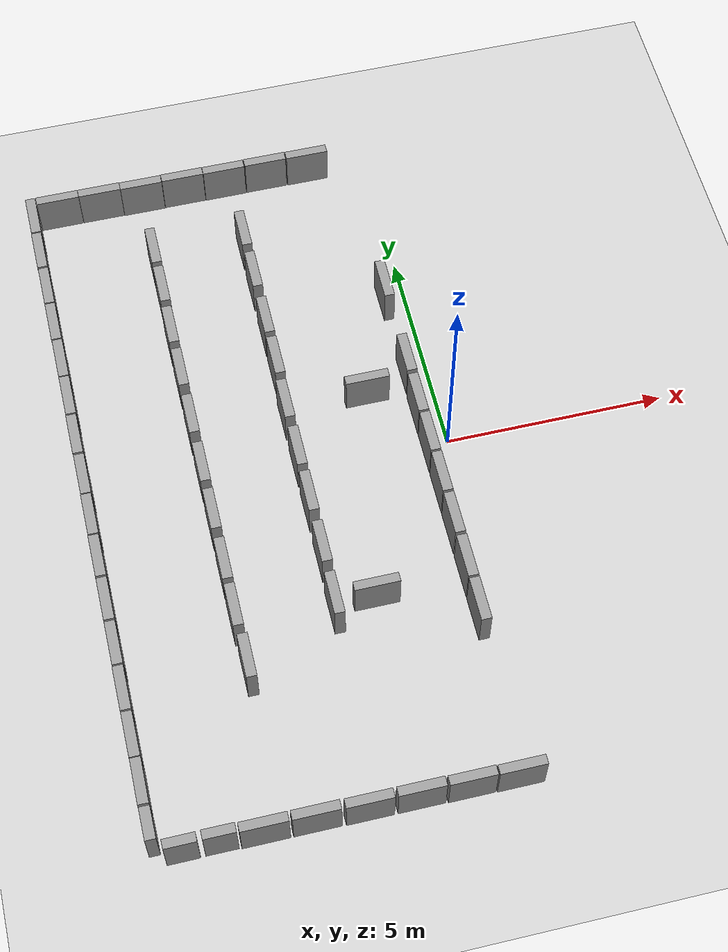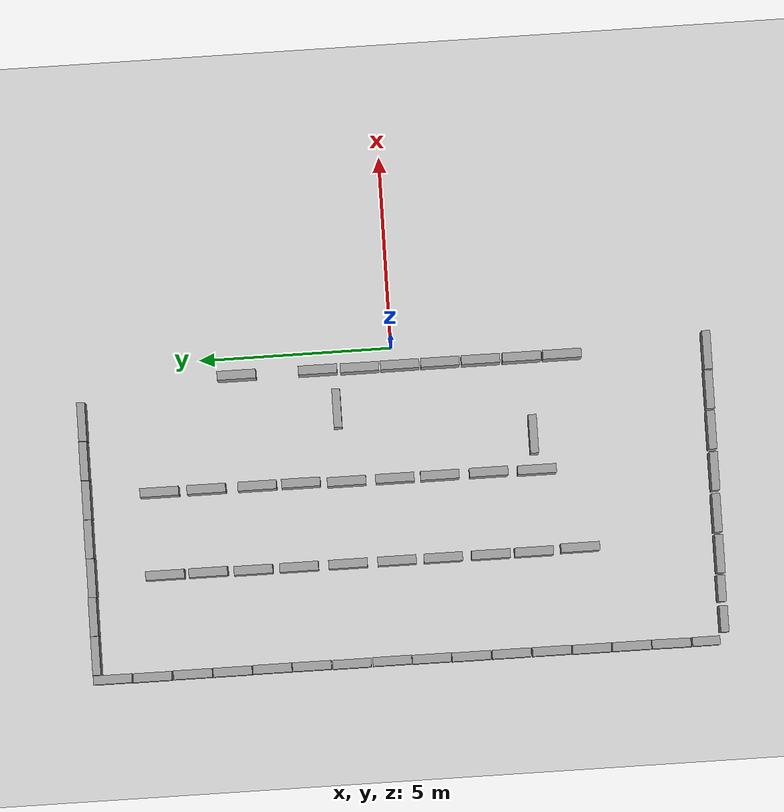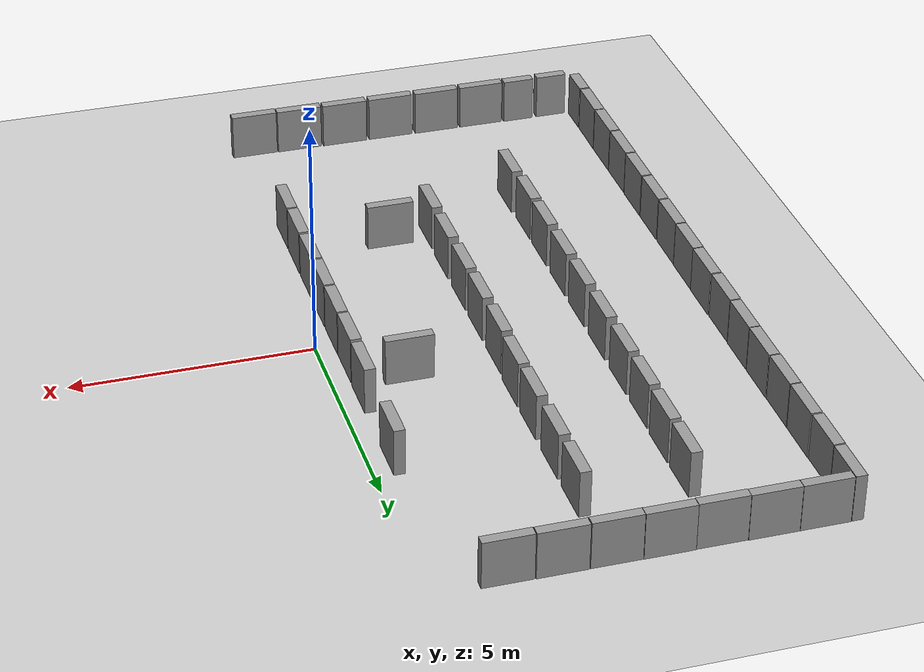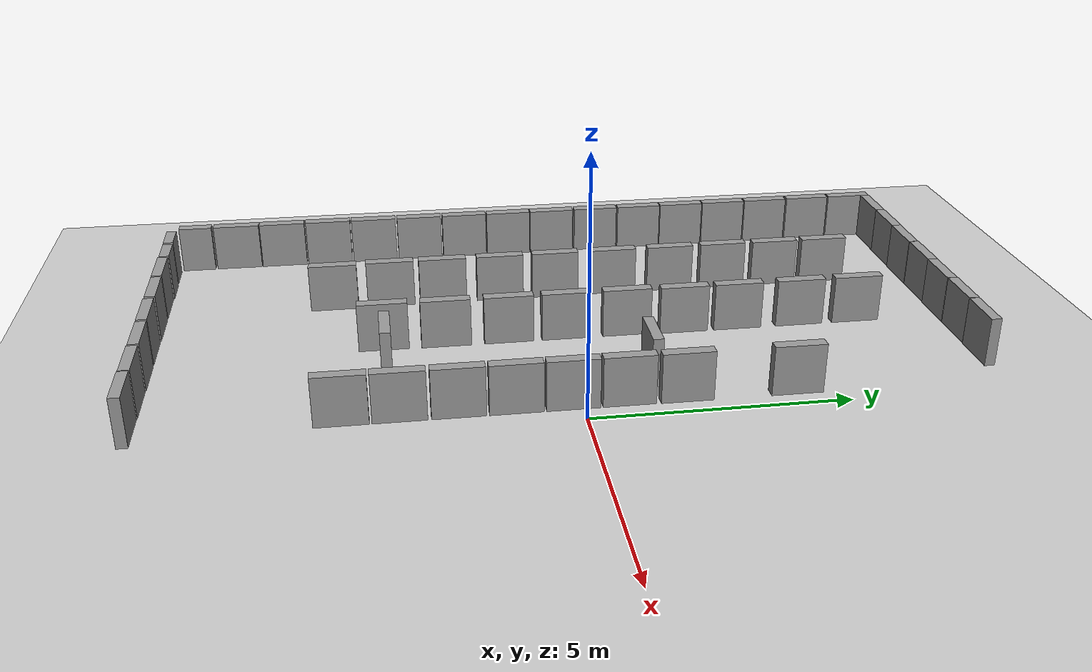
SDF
<sdf version="1.6">
 <world name="default">
  <model name="ground_plane">
   <static>1</static>
   <static>1</static>
   <link name="link">
    <collision name="collision">
     <geometry><plane><normal>0 0 1</normal><size>100 100</size></plane></geometry>
     <surface><friction><ode><mu>100</mu><mu2>50</mu2></ode></friction></surface>
    </collision>
    <visual name="visual">
     <cast_shadows>0</cast_shadows>
     <geometry><plane><normal>0 0 1</normal><size>100 100</size></plane></geometry>
     <material>
      <script><uri>file://media/materials/scripts/gazebo.material</uri><name>Gazebo/Grey</name></script>
     </material>
    </visual>
   </link>
  </model>
  <model name="unit_box_clone">
   <pose>-7.49846 8.11965 0.500001 0 -2e-06 6.5e-05</pose>
   <link name="link">
    <inertial>
     <mass>1</mass>
     <inertia>
      <ixx>0.166667</ixx>
      <ixy>0</ixy>
      <ixz>0</ixz>
      <iyy>0.166667</iyy>
      <iyz>0</iyz>
      <izz>0.166667</izz>
     </inertia>
    </inertial>
    <collision name="collision"><geometry><box><size>1 0.210541 1</size></box></geometry></collision>
    <visual name="visual">
     <geometry><box><size>1 0.210541 1</size></box></geometry>
     <material>
      <script><name>Gazebo/Grey</name><uri>file://media/materials/scripts/gazebo.material</uri></script>
     </material>
    </visual>
   </link>
  </model>
  <model name="unit_box_clone_0">
   <pose>-6.49283 8.11979 0.499997 1e-06 6e-06 -8.5e-05</pose>
   <link name="link">
    <inertial>
     <mass>1</mass>
     <inertia>
      <ixx>0.166667</ixx>
      <ixy>0</ixy>
      <ixz>0</ixz>
      <iyy>0.166667</iyy>
      <iyz>0</iyz>
      <izz>0.166667</izz>
     </inertia>
    </inertial>
    <collision name="collision"><geometry><box><size>1 0.210541 1</size></box></geometry></collision>
    <visual name="visual">
     <geometry><box><size>1 0.210541 1</size></box></geometry>
     <material>
      <script><name>Gazebo/Grey</name><uri>file://media/materials/scripts/gazebo.material</uri></script>
     </material>
    </visual>
   </link>
  </model>
  <model name="unit_box_clone_1">
   <pose>-5.49281 8.10829 0.500001 -0 2e-06 -0.000116</pose>
   <link name="link">
    <inertial>
     <mass>1</mass>
     <inertia>
      <ixx>0.166667</ixx>
      <ixy>0</ixy>
      <ixz>0</ixz>
      <iyy>0.166667</iyy>
      <iyz>0</iyz>
      <izz>0.166667</izz>
     </inertia>
    </inertial>
    <collision name="collision"><geometry><box><size>1 0.210541 1</size></box></geometry></collision>
    <visual name="visual">
     <geometry><box><size>1 0.210541 1</size></box></geometry>
     <material>
      <script><name>Gazebo/Grey</name><uri>file://media/materials/scripts/gazebo.material</uri></script>
     </material>
    </visual>
   </link>
  </model>
  <model name="unit_box_clone_2">
   <pose>-4.48767 8.11835 0.500001 0 -2e-06 6.5e-05</pose>
   <link name="link">
    <inertial>
     <mass>1</mass>
     <inertia>
      <ixx>0.166667</ixx>
      <ixy>0</ixy>
      <ixz>0</ixz>
      <iyy>0.166667</iyy>
      <iyz>0</iyz>
      <izz>0.166667</izz>
     </inertia>
    </inertial>
    <collision name="collision"><geometry><box><size>1 0.210541 1</size></box></geometry></collision>
    <visual name="visual">
     <geometry><box><size>1 0.210541 1</size></box></geometry>
     <material>
      <script><name>Gazebo/Grey</name><uri>file://media/materials/scripts/gazebo.material</uri></script>
     </material>
    </visual>
   </link>
  </model>
  <model name="unit_box_clone_3">
   <pose>-3.48208 8.11168 0.500001 0 -2e-06 6.5e-05</pose>
   <link name="link">
    <inertial>
     <mass>1</mass>
     <inertia>
      <ixx>0.166667</ixx>
      <ixy>0</ixy>
      <ixz>0</ixz>
      <iyy>0.166667</iyy>
      <iyz>0</iyz>
      <izz>0.166667</izz>
     </inertia>
    </inertial>
    <collision name="collision"><geometry><box><size>1 0.210541 1</size></box></geometry></collision>
    <visual name="visual">
     <geometry><box><size>1 0.210541 1</size></box></geometry>
     <material>
      <script><name>Gazebo/Grey</name><uri>file://media/materials/scripts/gazebo.material</uri></script>
     </material>
    </visual>
   </link>
  </model>
  <model name="unit_box_clone_4">
   <pose>-2.46317 8.11834 0.500001 0 -2e-06 6.5e-05</pose>
   <link name="link">
    <inertial>
     <mass>1</mass>
     <inertia>
      <ixx>0.166667</ixx>
      <ixy>0</ixy>
      <ixz>0</ixz>
      <iyy>0.166667</iyy>
      <iyz>0</iyz>
      <izz>0.166667</izz>
     </inertia>
    </inertial>
    <collision name="collision"><geometry><box><size>1 0.210541 1</size></box></geometry></collision>
    <visual name="visual">
     <geometry><box><size>1 0.210541 1</size></box></geometry>
     <material>
      <script><name>Gazebo/Grey</name><uri>file://media/materials/scripts/gazebo.material</uri></script>
     </material>
    </visual>
   </link>
  </model>
  <model name="unit_box_clone_5">
   <pose>-1.44426 8.11168 0.500001 0 -2e-06 6.5e-05</pose>
   <link name="link">
    <inertial>
     <mass>1</mass>
     <inertia>
      <ixx>0.166667</ixx>
      <ixy>0</ixy>
      <ixz>0</ixz>
      <iyy>0.166667</iyy>
      <iyz>0</iyz>
      <izz>0.166667</izz>
     </inertia>
    </inertial>
    <collision name="collision"><geometry><box><size>1 0.210541 1</size></box></geometry></collision>
    <visual name="visual">
     <geometry><box><size>1 0.210541 1</size></box></geometry>
     <material>
      <script><name>Gazebo/Grey</name><uri>file://media/materials/scripts/gazebo.material</uri></script>
     </material>
    </visual>
   </link>
  </model>
  <model name="unit_box_clone_15_clone_7">
   <pose>-0.633984 -8.14882 0.500001 0 -2e-06 6.5e-05</pose>
   <link name="link">
    <inertial>
     <mass>1</mass>
     <inertia>
      <ixx>0.166667</ixx>
      <ixy>0</ixy>
      <ixz>0</ixz>
      <iyy>0.166667</iyy>
      <iyz>0</iyz>
      <izz>0.166667</izz>
     </inertia>
    </inertial>
    <collision name="collision"><geometry><box><size>1 0.210541 1</size></box></geometry></collision>
    <visual name="visual">
     <geometry><box><size>1 0.210541 1</size></box></geometry>
     <material>
      <script><name>Gazebo/Grey</name><uri>file://media/materials/scripts/gazebo.material</uri></script>
     </material>
    </visual>
   </link>
  </model>
  <model name="unit_box_clone_15_clone_8">
   <pose>-1.65924 -8.13754 0.500001 0 -2e-06 6.5e-05</pose>
   <link name="link">
    <inertial>
     <mass>1</mass>
     <inertia>
      <ixx>0.166667</ixx>
      <ixy>0</ixy>
      <ixz>0</ixz>
      <iyy>0.166667</iyy>
      <iyz>0</iyz>
      <izz>0.166667</izz>
     </inertia>
    </inertial>
    <collision name="collision"><geometry><box><size>1 0.210541 1</size></box></geometry></collision>
    <visual name="visual">
     <geometry><box><size>1 0.210541 1</size></box></geometry>
     <material>
      <script><name>Gazebo/Grey</name><uri>file://media/materials/scripts/gazebo.material</uri></script>
     </material>
    </visual>
   </link>
  </model>
  <model name="unit_box_clone_15_clone_9">
   <pose>-2.70704 -8.12629 0.500001 0 -2e-06 6.5e-05</pose>
   <link name="link">
    <inertial>
     <mass>1</mass>
     <inertia>
      <ixx>0.166667</ixx>
      <ixy>0</ixy>
      <ixz>0</ixz>
      <iyy>0.166667</iyy>
      <iyz>0</iyz>
      <izz>0.166667</izz>
     </inertia>
    </inertial>
    <collision name="collision"><geometry><box><size>1 0.210541 1</size></box></geometry></collision>
    <visual name="visual">
     <geometry><box><size>1 0.210541 1</size></box></geometry>
     <material>
      <script><name>Gazebo/Grey</name><uri>file://media/materials/scripts/gazebo.material</uri></script>
     </material>
    </visual>
   </link>
  </model>
  <model name="unit_box_clone_15_clone_10">
   <pose>-3.77737 -8.12628 0.500001 0 -2e-06 6.5e-05</pose>
   <link name="link">
    <inertial>
     <mass>1</mass>
     <inertia>
      <ixx>0.166667</ixx>
      <ixy>0</ixy>
      <ixz>0</ixz>
      <iyy>0.166667</iyy>
      <iyz>0</iyz>
      <izz>0.166667</izz>
     </inertia>
    </inertial>
    <collision name="collision"><geometry><box><size>1 0.210541 1</size></box></geometry></collision>
    <visual name="visual">
     <geometry><box><size>1 0.210541 1</size></box></geometry>
     <material>
      <script><name>Gazebo/Grey</name><uri>file://media/materials/scripts/gazebo.material</uri></script>
     </material>
    </visual>
   </link>
  </model>
  <model name="unit_box_clone_15_clone_11">
   <pose>-4.85897 -8.11502 0.500001 0 -2e-06 6.5e-05</pose>
   <link name="link">
    <inertial>
     <mass>1</mass>
     <inertia>
      <ixx>0.166667</ixx>
      <ixy>0</ixy>
      <ixz>0</ixz>
      <iyy>0.166667</iyy>
      <iyz>0</iyz>
      <izz>0.166667</izz>
     </inertia>
    </inertial>
    <collision name="collision"><geometry><box><size>1 0.210541 1</size></box></geometry></collision>
    <visual name="visual">
     <geometry><box><size>1 0.210541 1</size></box></geometry>
     <material>
      <script><name>Gazebo/Grey</name><uri>file://media/materials/scripts/gazebo.material</uri></script>
     </material>
    </visual>
   </link>
  </model>
  <model name="unit_box_clone_15_clone_12">
   <pose>-5.91803 -8.11501 0.500001 0 -2e-06 6.5e-05</pose>
   <link name="link">
    <inertial>
     <mass>1</mass>
     <inertia>
      <ixx>0.166667</ixx>
      <ixy>0</ixy>
      <ixz>0</ixz>
      <iyy>0.166667</iyy>
      <iyz>0</iyz>
      <izz>0.166667</izz>
     </inertia>
    </inertial>
    <collision name="collision"><geometry><box><size>1 0.210541 1</size></box></geometry></collision>
    <visual name="visual">
     <geometry><box><size>1 0.210541 1</size></box></geometry>
     <material>
      <script><name>Gazebo/Grey</name><uri>file://media/materials/scripts/gazebo.material</uri></script>
     </material>
    </visual>
   </link>
  </model>
  <model name="unit_box_0_clone_4_clone">
   <pose>-8.12647 7.71769 0.5 0 -0 7.5e-05</pose>
   <link name="link">
    <inertial>
     <mass>1</mass>
     <inertia>
      <ixx>0.166667</ixx>
      <ixy>0</ixy>
      <ixz>0</ixz>
      <iyy>0.166667</iyy>
      <iyz>0</iyz>
      <izz>0.166667</izz>
     </inertia>
    </inertial>
    <collision name="collision"><geometry><box><size>0.230819 1 1</size></box></geometry></collision>
    <visual name="visual">
     <geometry><box><size>0.230819 1 1</size></box></geometry>
     <material>
      <script><name>Gazebo/Grey</name><uri>file://media/materials/scripts/gazebo.material</uri></script>
     </material>
    </visual>
   </link>
  </model>
  <model name="unit_box_0_clone_4_clone_0">
   <pose>-8.13281 6.68715 0.5 0 -0 7.5e-05</pose>
   <link name="link">
    <inertial>
     <mass>1</mass>
     <inertia>
      <ixx>0.166667</ixx>
      <ixy>0</ixy>
      <ixz>0</ixz>
      <iyy>0.166667</iyy>
      <iyz>0</iyz>
      <izz>0.166667</izz>
     </inertia>
    </inertial>
    <collision name="collision"><geometry><box><size>0.230819 1 1</size></box></geometry></collision>
    <visual name="visual">
     <geometry><box><size>0.230819 1 1</size></box></geometry>
     <material>
      <script><name>Gazebo/Grey</name><uri>file://media/materials/scripts/gazebo.material</uri></script>
     </material>
    </visual>
   </link>
  </model>
  <model name="unit_box_0_clone_4_clone_1">
   <pose>-8.12606 5.64723 0.5 0 -0 7.5e-05</pose>
   <link name="link">
    <inertial>
     <mass>1</mass>
     <inertia>
      <ixx>0.166667</ixx>
      <ixy>0</ixy>
      <ixz>0</ixz>
      <iyy>0.166667</iyy>
      <iyz>0</iyz>
      <izz>0.166667</izz>
     </inertia>
    </inertial>
    <collision name="collision"><geometry><box><size>0.230819 1 1</size></box></geometry></collision>
    <visual name="visual">
     <geometry><box><size>0.230819 1 1</size></box></geometry>
     <material>
      <script><name>Gazebo/Grey</name><uri>file://media/materials/scripts/gazebo.material</uri></script>
     </material>
    </visual>
   </link>
  </model>
  <model name="unit_box_0_clone_4_clone_2">
   <pose>-8.12607 4.62081 0.5 0 -0 7.5e-05</pose>
   <link name="link">
    <inertial>
     <mass>1</mass>
     <inertia>
      <ixx>0.166667</ixx>
      <ixy>0</ixy>
      <ixz>0</ixz>
      <iyy>0.166667</iyy>
      <iyz>0</iyz>
      <izz>0.166667</izz>
     </inertia>
    </inertial>
    <collision name="collision"><geometry><box><size>0.230819 1 1</size></box></geometry></collision>
    <visual name="visual">
     <geometry><box><size>0.230819 1 1</size></box></geometry>
     <material>
      <script><name>Gazebo/Grey</name><uri>file://media/materials/scripts/gazebo.material</uri></script>
     </material>
    </visual>
   </link>
  </model>
  <model name="unit_box_0_clone_4_clone_3">
   <pose>-8.11932 3.59439 0.5 0 -0 7.5e-05</pose>
   <link name="link">
    <inertial>
     <mass>1</mass>
     <inertia>
      <ixx>0.166667</ixx>
      <ixy>0</ixy>
      <ixz>0</ixz>
      <iyy>0.166667</iyy>
      <iyz>0</iyz>
      <izz>0.166667</izz>
     </inertia>
    </inertial>
    <collision name="collision"><geometry><box><size>0.230819 1 1</size></box></geometry></collision>
    <visual name="visual">
     <geometry><box><size>0.230819 1 1</size></box></geometry>
     <material>
      <script><name>Gazebo/Grey</name><uri>file://media/materials/scripts/gazebo.material</uri></script>
     </material>
    </visual>
   </link>
  </model>
  <model name="unit_box_0_clone_4_clone_4">
   <pose>-8.11932 2.57473 0.5 0 -0 7.5e-05</pose>
   <link name="link">
    <inertial>
     <mass>1</mass>
     <inertia>
      <ixx>0.166667</ixx>
      <ixy>0</ixy>
      <ixz>0</ixz>
      <iyy>0.166667</iyy>
      <iyz>0</iyz>
      <izz>0.166667</izz>
     </inertia>
    </inertial>
    <collision name="collision"><geometry><box><size>0.230819 1 1</size></box></geometry></collision>
    <visual name="visual">
     <geometry><box><size>0.230819 1 1</size></box></geometry>
     <material>
      <script><name>Gazebo/Grey</name><uri>file://media/materials/scripts/gazebo.material</uri></script>
     </material>
    </visual>
   </link>
  </model>
  <model name="unit_box_0_clone_4_clone_5">
   <pose>-8.12608 1.54156 0.5 0 -0 7.5e-05</pose>
   <link name="link">
    <inertial>
     <mass>1</mass>
     <inertia>
      <ixx>0.166667</ixx>
      <ixy>0</ixy>
      <ixz>0</ixz>
      <iyy>0.166667</iyy>
      <iyz>0</iyz>
      <izz>0.166667</izz>
     </inertia>
    </inertial>
    <collision name="collision"><geometry><box><size>0.230819 1 1</size></box></geometry></collision>
    <visual name="visual">
     <geometry><box><size>0.230819 1 1</size></box></geometry>
     <material>
      <script><name>Gazebo/Grey</name><uri>file://media/materials/scripts/gazebo.material</uri></script>
     </material>
    </visual>
   </link>
  </model>
  <model name="unit_box_0_clone_4_clone_6">
   <pose>-8.11933 0.501634 0.5 0 -0 7.5e-05</pose>
   <link name="link">
    <inertial>
     <mass>1</mass>
     <inertia>
      <ixx>0.166667</ixx>
      <ixy>0</ixy>
      <ixz>0</ixz>
      <iyy>0.166667</iyy>
      <iyz>0</iyz>
      <izz>0.166667</izz>
     </inertia>
    </inertial>
    <collision name="collision"><geometry><box><size>0.230819 1 1</size></box></geometry></collision>
    <visual name="visual">
     <geometry><box><size>0.230819 1 1</size></box></geometry>
     <material>
      <script><name>Gazebo/Grey</name><uri>file://media/materials/scripts/gazebo.material</uri></script>
     </material>
    </visual>
   </link>
  </model>
  <model name="unit_box_0_clone_4_clone_7">
   <pose>-8.12609 -0.51803 0.5 0 -0 7.5e-05</pose>
   <link name="link">
    <inertial>
     <mass>1</mass>
     <inertia>
      <ixx>0.166667</ixx>
      <ixy>0</ixy>
      <ixz>0</ixz>
      <iyy>0.166667</iyy>
      <iyz>0</iyz>
      <izz>0.166667</izz>
     </inertia>
    </inertial>
    <collision name="collision"><geometry><box><size>0.230819 1 1</size></box></geometry></collision>
    <visual name="visual">
     <geometry><box><size>0.230819 1 1</size></box></geometry>
     <material>
      <script><name>Gazebo/Grey</name><uri>file://media/materials/scripts/gazebo.material</uri></script>
     </material>
    </visual>
   </link>
  </model>
  <model name="unit_box_0_clone_4_clone_8">
   <pose>-8.13284 -1.54445 0.5 0 -0 7.5e-05</pose>
   <link name="link">
    <inertial>
     <mass>1</mass>
     <inertia>
      <ixx>0.166667</ixx>
      <ixy>0</ixy>
      <ixz>0</ixz>
      <iyy>0.166667</iyy>
      <iyz>0</iyz>
      <izz>0.166667</izz>
     </inertia>
    </inertial>
    <collision name="collision"><geometry><box><size>0.230819 1 1</size></box></geometry></collision>
    <visual name="visual">
     <geometry><box><size>0.230819 1 1</size></box></geometry>
     <material>
      <script><name>Gazebo/Grey</name><uri>file://media/materials/scripts/gazebo.material</uri></script>
     </material>
    </visual>
   </link>
  </model>
  <model name="unit_box_0_clone_4_clone_9">
   <pose>-8.13285 -2.58437 0.5 0 -0 7.5e-05</pose>
   <link name="link">
    <inertial>
     <mass>1</mass>
     <inertia>
      <ixx>0.166667</ixx>
      <ixy>0</ixy>
      <ixz>0</ixz>
      <iyy>0.166667</iyy>
      <iyz>0</iyz>
      <izz>0.166667</izz>
     </inertia>
    </inertial>
    <collision name="collision"><geometry><box><size>0.230819 1 1</size></box></geometry></collision>
    <visual name="visual">
     <geometry><box><size>0.230819 1 1</size></box></geometry>
     <material>
      <script><name>Gazebo/Grey</name><uri>file://media/materials/scripts/gazebo.material</uri></script>
     </material>
    </visual>
   </link>
  </model>
  <model name="unit_box_0_clone_4_clone_10">
   <pose>-8.13285 -3.62429 0.5 0 -0 7.5e-05</pose>
   <link name="link">
    <inertial>
     <mass>1</mass>
     <inertia>
      <ixx>0.166667</ixx>
      <ixy>0</ixy>
      <ixz>0</ixz>
      <iyy>0.166667</iyy>
      <iyz>0</iyz>
      <izz>0.166667</izz>
     </inertia>
    </inertial>
    <collision name="collision"><geometry><box><size>0.230819 1 1</size></box></geometry></collision>
    <visual name="visual">
     <geometry><box><size>0.230819 1 1</size></box></geometry>
     <material>
      <script><name>Gazebo/Grey</name><uri>file://media/materials/scripts/gazebo.material</uri></script>
     </material>
    </visual>
   </link>
  </model>
  <model name="unit_box_0_clone_4_clone_11">
   <pose>-8.1396 -4.65746 0.5 0 -0 7.5e-05</pose>
   <link name="link">
    <inertial>
     <mass>1</mass>
     <inertia>
      <ixx>0.166667</ixx>
      <ixy>0</ixy>
      <ixz>0</ixz>
      <iyy>0.166667</iyy>
      <iyz>0</iyz>
      <izz>0.166667</izz>
     </inertia>
    </inertial>
    <collision name="collision"><geometry><box><size>0.230819 1 1</size></box></geometry></collision>
    <visual name="visual">
     <geometry><box><size>0.230819 1 1</size></box></geometry>
     <material>
      <script><name>Gazebo/Grey</name><uri>file://media/materials/scripts/gazebo.material</uri></script>
     </material>
    </visual>
   </link>
  </model>
  <model name="unit_box_0_clone_4_clone_12">
   <pose>-8.1396 -5.69063 0.5 0 -0 7.5e-05</pose>
   <link name="link">
    <inertial>
     <mass>1</mass>
     <inertia>
      <ixx>0.166667</ixx>
      <ixy>0</ixy>
      <ixz>0</ixz>
      <iyy>0.166667</iyy>
      <iyz>0</iyz>
      <izz>0.166667</izz>
     </inertia>
    </inertial>
    <collision name="collision"><geometry><box><size>0.230819 1 1</size></box></geometry></collision>
    <visual name="visual">
     <geometry><box><size>0.230819 1 1</size></box></geometry>
     <material>
      <script><name>Gazebo/Grey</name><uri>file://media/materials/scripts/gazebo.material</uri></script>
     </material>
    </visual>
   </link>
  </model>
  <model name="unit_box_0_clone_4_clone_13">
   <pose>-8.14113 -6.70872 0.5 0 -0 -0.009849</pose>
   <link name="link">
    <inertial>
     <mass>1</mass>
     <inertia>
      <ixx>0.166667</ixx>
      <ixy>0</ixy>
      <ixz>0</ixz>
      <iyy>0.166667</iyy>
      <iyz>0</iyz>
      <izz>0.166667</izz>
     </inertia>
    </inertial>
    <collision name="collision"><geometry><box><size>0.230819 1 1</size></box></geometry></collision>
    <visual name="visual">
     <geometry><box><size>0.230819 1 1</size></box></geometry>
     <material>
      <script><name>Gazebo/Grey</name><uri>file://media/materials/scripts/gazebo.material</uri></script>
     </material>
    </visual>
   </link>
  </model>
  <model name="unit_box_0_clone_4_clone_1_clone">
   <pose>-5.52752 6.20788 0.5 0 -0 7.5e-05</pose>
   <link name="link">
    <inertial>
     <mass>1</mass>
     <inertia>
      <ixx>0.166667</ixx>
      <ixy>0</ixy>
      <ixz>0</ixz>
      <iyy>0.166667</iyy>
      <iyz>0</iyz>
      <izz>0.166667</izz>
     </inertia>
    </inertial>
    <collision name="collision"><geometry><box><size>0.230819 1 1</size></box></geometry></collision>
    <visual name="visual">
     <geometry><box><size>0.230819 1 1</size></box></geometry>
     <material>
      <script><name>Gazebo/Grey</name><uri>file://media/materials/scripts/gazebo.material</uri></script>
     </material>
    </visual>
   </link>
  </model>
  <model name="unit_box_0_clone_4_clone_1_clone_0">
   <pose>-5.52753 5.0919 0.5 0 -0 7.5e-05</pose>
   <link name="link">
    <inertial>
     <mass>1</mass>
     <inertia>
      <ixx>0.166667</ixx>
      <ixy>0</ixy>
      <ixz>0</ixz>
      <iyy>0.166667</iyy>
      <iyz>0</iyz>
      <izz>0.166667</izz>
     </inertia>
    </inertial>
    <collision name="collision"><geometry><box><size>0.230819 1 1</size></box></geometry></collision>
    <visual name="visual">
     <geometry><box><size>0.230819 1 1</size></box></geometry>
     <material>
      <script><name>Gazebo/Grey</name><uri>file://media/materials/scripts/gazebo.material</uri></script>
     </material>
    </visual>
   </link>
  </model>
  <model name="unit_box_0_clone_4_clone_1_clone_1">
   <pose>-5.54419 3.92594 0.5 0 -0 7.5e-05</pose>
   <link name="link">
    <inertial>
     <mass>1</mass>
     <inertia>
      <ixx>0.166667</ixx>
      <ixy>0</ixy>
      <ixz>0</ixz>
      <iyy>0.166667</iyy>
      <iyz>0</iyz>
      <izz>0.166667</izz>
     </inertia>
    </inertial>
    <collision name="collision"><geometry><box><size>0.230819 1 1</size></box></geometry></collision>
    <visual name="visual">
     <geometry><box><size>0.230819 1 1</size></box></geometry>
     <material>
      <script><name>Gazebo/Grey</name><uri>file://media/materials/scripts/gazebo.material</uri></script>
     </material>
    </visual>
   </link>
  </model>
  <model name="unit_box_0_clone_4_clone_1_clone_2">
   <pose>-5.5442 2.74333 0.5 0 -0 7.5e-05</pose>
   <link name="link">
    <inertial>
     <mass>1</mass>
     <inertia>
      <ixx>0.166667</ixx>
      <ixy>0</ixy>
      <ixz>0</ixz>
      <iyy>0.166667</iyy>
      <iyz>0</iyz>
      <izz>0.166667</izz>
     </inertia>
    </inertial>
    <collision name="collision"><geometry><box><size>0.230819 1 1</size></box></geometry></collision>
    <visual name="visual">
     <geometry><box><size>0.230819 1 1</size></box></geometry>
     <material>
      <script><name>Gazebo/Grey</name><uri>file://media/materials/scripts/gazebo.material</uri></script>
     </material>
    </visual>
   </link>
  </model>
  <model name="unit_box_0_clone_4_clone_1_clone_3">
   <pose>-5.5442 1.47744 0.5 0 -0 7.5e-05</pose>
   <link name="link">
    <inertial>
     <mass>1</mass>
     <inertia>
      <ixx>0.166667</ixx>
      <ixy>0</ixy>
      <ixz>0</ixz>
      <iyy>0.166667</iyy>
      <iyz>0</iyz>
      <izz>0.166667</izz>
     </inertia>
    </inertial>
    <collision name="collision"><geometry><box><size>0.230819 1 1</size></box></geometry></collision>
    <visual name="visual">
     <geometry><box><size>0.230819 1 1</size></box></geometry>
     <material>
      <script><name>Gazebo/Grey</name><uri>file://media/materials/scripts/gazebo.material</uri></script>
     </material>
    </visual>
   </link>
  </model>
  <model name="unit_box_0_clone_4_clone_1_clone_4">
   <pose>-5.54421 0.211547 0.5 0 -0 7.5e-05</pose>
   <link name="link">
    <inertial>
     <mass>1</mass>
     <inertia>
      <ixx>0.166667</ixx>
      <ixy>0</ixy>
      <ixz>0</ixz>
      <iyy>0.166667</iyy>
      <iyz>0</iyz>
      <izz>0.166667</izz>
     </inertia>
    </inertial>
    <collision name="collision"><geometry><box><size>0.230819 1 1</size></box></geometry></collision>
    <visual name="visual">
     <geometry><box><size>0.230819 1 1</size></box></geometry>
     <material>
      <script><name>Gazebo/Grey</name><uri>file://media/materials/scripts/gazebo.material</uri></script>
     </material>
    </visual>
   </link>
  </model>
  <model name="unit_box_0_clone_4_clone_1_clone_5">
   <pose>-5.54422 -0.98772 0.5 0 -0 7.5e-05</pose>
   <link name="link">
    <inertial>
     <mass>1</mass>
     <inertia>
      <ixx>0.166667</ixx>
      <ixy>0</ixy>
      <ixz>0</ixz>
      <iyy>0.166667</iyy>
      <iyz>0</iyz>
      <izz>0.166667</izz>
     </inertia>
    </inertial>
    <collision name="collision"><geometry><box><size>0.230819 1 1</size></box></geometry></collision>
    <visual name="visual">
     <geometry><box><size>0.230819 1 1</size></box></geometry>
     <material>
      <script><name>Gazebo/Grey</name><uri>file://media/materials/scripts/gazebo.material</uri></script>
     </material>
    </visual>
   </link>
  </model>
  <model name="unit_box_0_clone_4_clone_1_clone_6">
   <pose>-5.54422 -2.2203 0.5 0 -0 7.5e-05</pose>
   <link name="link">
    <inertial>
     <mass>1</mass>
     <inertia>
      <ixx>0.166667</ixx>
      <ixy>0</ixy>
      <ixz>0</ixz>
      <iyy>0.166667</iyy>
      <iyz>0</iyz>
      <izz>0.166667</izz>
     </inertia>
    </inertial>
    <collision name="collision"><geometry><box><size>0.230819 1 1</size></box></geometry></collision>
    <visual name="visual">
     <geometry><box><size>0.230819 1 1</size></box></geometry>
     <material>
      <script><name>Gazebo/Grey</name><uri>file://media/materials/scripts/gazebo.material</uri></script>
     </material>
    </visual>
   </link>
  </model>
  <model name="unit_box_0_clone_4_clone_1_clone_7">
   <pose>-5.54423 -3.33629 0.5 0 -0 7.5e-05</pose>
   <link name="link">
    <inertial>
     <mass>1</mass>
     <inertia>
      <ixx>0.166667</ixx>
      <ixy>0</ixy>
      <ixz>0</ixz>
      <iyy>0.166667</iyy>
      <iyz>0</iyz>
      <izz>0.166667</izz>
     </inertia>
    </inertial>
    <collision name="collision"><geometry><box><size>0.230819 1 1</size></box></geometry></collision>
    <visual name="visual">
     <geometry><box><size>0.230819 1 1</size></box></geometry>
     <material>
      <script><name>Gazebo/Grey</name><uri>file://media/materials/scripts/gazebo.material</uri></script>
     </material>
    </visual>
   </link>
  </model>
  <model name="unit_box_0_clone_4_clone_1_clone_8">
   <pose>-5.51092 -4.53555 0.5 0 -0 7.5e-05</pose>
   <link name="link">
    <inertial>
     <mass>1</mass>
     <inertia>
      <ixx>0.166667</ixx>
      <ixy>0</ixy>
      <ixz>0</ixz>
      <iyy>0.166667</iyy>
      <iyz>0</iyz>
      <izz>0.166667</izz>
     </inertia>
    </inertial>
    <collision name="collision"><geometry><box><size>0.230819 1 1</size></box></geometry></collision>
    <visual name="visual">
     <geometry><box><size>0.230819 1 1</size></box></geometry>
     <material>
      <script><name>Gazebo/Grey</name><uri>file://media/materials/scripts/gazebo.material</uri></script>
     </material>
    </visual>
   </link>
  </model>
  <model name="unit_box_0_clone_4_clone_1_clone_10">
   <pose>-3.37884 6.22453 0.5 0 -0 7.5e-05</pose>
   <link name="link">
    <inertial>
     <mass>1</mass>
     <inertia>
      <ixx>0.166667</ixx>
      <ixy>0</ixy>
      <ixz>0</ixz>
      <iyy>0.166667</iyy>
      <iyz>0</iyz>
      <izz>0.166667</izz>
     </inertia>
    </inertial>
    <collision name="collision"><geometry><box><size>0.230819 1 1</size></box></geometry></collision>
    <visual name="visual">
     <geometry><box><size>0.230819 1 1</size></box></geometry>
     <material>
      <script><name>Gazebo/Grey</name><uri>file://media/materials/scripts/gazebo.material</uri></script>
     </material>
    </visual>
   </link>
  </model>
  <model name="unit_box_0_clone_4_clone_1_clone_11">
   <pose>-3.37884 5.0086 0.5 0 -0 7.5e-05</pose>
   <link name="link">
    <inertial>
     <mass>1</mass>
     <inertia>
      <ixx>0.166667</ixx>
      <ixy>0</ixy>
      <ixz>0</ixz>
      <iyy>0.166667</iyy>
      <iyz>0</iyz>
      <izz>0.166667</izz>
     </inertia>
    </inertial>
    <collision name="collision"><geometry><box><size>0.230819 1 1</size></box></geometry></collision>
    <visual name="visual">
     <geometry><box><size>0.230819 1 1</size></box></geometry>
     <material>
      <script><name>Gazebo/Grey</name><uri>file://media/materials/scripts/gazebo.material</uri></script>
     </material>
    </visual>
   </link>
  </model>
  <model name="unit_box_0_clone_4_clone_1_clone_12">
   <pose>-3.37885 3.69274 0.5 0 -0 7.5e-05</pose>
   <link name="link">
    <inertial>
     <mass>1</mass>
     <inertia>
      <ixx>0.166667</ixx>
      <ixy>0</ixy>
      <ixz>0</ixz>
      <iyy>0.166667</iyy>
      <iyz>0</iyz>
      <izz>0.166667</izz>
     </inertia>
    </inertial>
    <collision name="collision"><geometry><box><size>0.230819 1 1</size></box></geometry></collision>
    <visual name="visual">
     <geometry><box><size>0.230819 1 1</size></box></geometry>
     <material>
      <script><name>Gazebo/Grey</name><uri>file://media/materials/scripts/gazebo.material</uri></script>
     </material>
    </visual>
   </link>
  </model>
  <model name="unit_box_0_clone_4_clone_1_clone_13">
   <pose>-3.37886 2.5601 0.5 0 -0 7.5e-05</pose>
   <link name="link">
    <inertial>
     <mass>1</mass>
     <inertia>
      <ixx>0.166667</ixx>
      <ixy>0</ixy>
      <ixz>0</ixz>
      <iyy>0.166667</iyy>
      <iyz>0</iyz>
      <izz>0.166667</izz>
     </inertia>
    </inertial>
    <collision name="collision"><geometry><box><size>0.230819 1 1</size></box></geometry></collision>
    <visual name="visual">
     <geometry><box><size>0.230819 1 1</size></box></geometry>
     <material>
      <script><name>Gazebo/Grey</name><uri>file://media/materials/scripts/gazebo.material</uri></script>
     </material>
    </visual>
   </link>
  </model>
  <model name="unit_box_0_clone_4_clone_1_clone_14">
   <pose>-3.41218 1.37749 0.5 0 -0 7.5e-05</pose>
   <link name="link">
    <inertial>
     <mass>1</mass>
     <inertia>
      <ixx>0.166667</ixx>
      <ixy>0</ixy>
      <ixz>0</ixz>
      <iyy>0.166667</iyy>
      <iyz>0</iyz>
      <izz>0.166667</izz>
     </inertia>
    </inertial>
    <collision name="collision"><geometry><box><size>0.230819 1 1</size></box></geometry></collision>
    <visual name="visual">
     <geometry><box><size>0.230819 1 1</size></box></geometry>
     <material>
      <script><name>Gazebo/Grey</name><uri>file://media/materials/scripts/gazebo.material</uri></script>
     </material>
    </visual>
   </link>
  </model>
  <model name="unit_box_0_clone_4_clone_1_clone_15">
   <pose>-3.41218 0.128253 0.5 0 -0 7.5e-05</pose>
   <link name="link">
    <inertial>
     <mass>1</mass>
     <inertia>
      <ixx>0.166667</ixx>
      <ixy>0</ixy>
      <ixz>0</ixz>
      <iyy>0.166667</iyy>
      <iyz>0</iyz>
      <izz>0.166667</izz>
     </inertia>
    </inertial>
    <collision name="collision"><geometry><box><size>0.230819 1 1</size></box></geometry></collision>
    <visual name="visual">
     <geometry><box><size>0.230819 1 1</size></box></geometry>
     <material>
      <script><name>Gazebo/Grey</name><uri>file://media/materials/scripts/gazebo.material</uri></script>
     </material>
    </visual>
   </link>
  </model>
  <model name="unit_box_0_clone_4_clone_1_clone_16">
   <pose>-3.41219 -1.0377 0.5 0 -0 7.5e-05</pose>
   <link name="link">
    <inertial>
     <mass>1</mass>
     <inertia>
      <ixx>0.166667</ixx>
      <ixy>0</ixy>
      <ixz>0</ixz>
      <iyy>0.166667</iyy>
      <iyz>0</iyz>
      <izz>0.166667</izz>
     </inertia>
    </inertial>
    <collision name="collision"><geometry><box><size>0.230819 1 1</size></box></geometry></collision>
    <visual name="visual">
     <geometry><box><size>0.230819 1 1</size></box></geometry>
     <material>
      <script><name>Gazebo/Grey</name><uri>file://media/materials/scripts/gazebo.material</uri></script>
     </material>
    </visual>
   </link>
  </model>
  <model name="unit_box_0_clone_4_clone_1_clone_17">
   <pose>-3.41219 -2.3036 0.5 0 -0 7.5e-05</pose>
   <link name="link">
    <inertial>
     <mass>1</mass>
     <inertia>
      <ixx>0.166667</ixx>
      <ixy>0</ixy>
      <ixz>0</ixz>
      <iyy>0.166667</iyy>
      <iyz>0</iyz>
      <izz>0.166667</izz>
     </inertia>
    </inertial>
    <collision name="collision"><geometry><box><size>0.230819 1 1</size></box></geometry></collision>
    <visual name="visual">
     <geometry><box><size>0.230819 1 1</size></box></geometry>
     <material>
      <script><name>Gazebo/Grey</name><uri>file://media/materials/scripts/gazebo.material</uri></script>
     </material>
    </visual>
   </link>
  </model>
  <model name="unit_box_0_clone_4_clone_1_clone_18">
   <pose>-3.42886 -3.55283 0.5 0 -0 7.5e-05</pose>
   <link name="link">
    <inertial>
     <mass>1</mass>
     <inertia>
      <ixx>0.166667</ixx>
      <ixy>0</ixy>
      <ixz>0</ixz>
      <iyy>0.166667</iyy>
      <iyz>0</iyz>
      <izz>0.166667</izz>
     </inertia>
    </inertial>
    <collision name="collision"><geometry><box><size>0.230819 1 1</size></box></geometry></collision>
    <visual name="visual">
     <geometry><box><size>0.230819 1 1</size></box></geometry>
     <material>
      <script><name>Gazebo/Grey</name><uri>file://media/materials/scripts/gazebo.material</uri></script>
     </material>
    </visual>
   </link>
  </model>
  <model name="unit_box_0_clone_4_clone_1_clone_10_clone_1">
   <pose>-0.482297 4.04665 0.5 0 -0 7.5e-05</pose>
   <link name="link">
    <inertial>
     <mass>1</mass>
     <inertia>
      <ixx>0.166667</ixx>
      <ixy>0</ixy>
      <ixz>0</ixz>
      <iyy>0.166667</iyy>
      <iyz>0</iyz>
      <izz>0.166667</izz>
     </inertia>
    </inertial>
    <collision name="collision"><geometry><box><size>0.230819 1 1</size></box></geometry></collision>
    <visual name="visual">
     <geometry><box><size>0.230819 1 1</size></box></geometry>
     <material>
      <script><name>Gazebo/Grey</name><uri>file://media/materials/scripts/gazebo.material</uri></script>
     </material>
    </visual>
   </link>
  </model>
  <model name="unit_box_0_clone_4_clone_1_clone_10_clone_3">
   <pose>-0.482806 1.94204 0.5 0 -0 7.5e-05</pose>
   <link name="link">
    <inertial>
     <mass>1</mass>
     <inertia>
      <ixx>0.166667</ixx>
      <ixy>0</ixy>
      <ixz>0</ixz>
      <iyy>0.166667</iyy>
      <iyz>0</iyz>
      <izz>0.166667</izz>
     </inertia>
    </inertial>
    <collision name="collision"><geometry><box><size>0.230819 1 1</size></box></geometry></collision>
    <visual name="visual">
     <geometry><box><size>0.230819 1 1</size></box></geometry>
     <material>
      <script><name>Gazebo/Grey</name><uri>file://media/materials/scripts/gazebo.material</uri></script>
     </material>
    </visual>
   </link>
  </model>
  <model name="unit_box_0_clone_4_clone_1_clone_10_clone_4">
   <pose>-0.492695 0.854868 0.5 0 -0 7.5e-05</pose>
   <link name="link">
    <inertial>
     <mass>1</mass>
     <inertia>
      <ixx>0.166667</ixx>
      <ixy>0</ixy>
      <ixz>0</ixz>
      <iyy>0.166667</iyy>
      <iyz>0</iyz>
      <izz>0.166667</izz>
     </inertia>
    </inertial>
    <collision name="collision"><geometry><box><size>0.230819 1 1</size></box></geometry></collision>
    <visual name="visual">
     <geometry><box><size>0.230819 1 1</size></box></geometry>
     <material>
      <script><name>Gazebo/Grey</name><uri>file://media/materials/scripts/gazebo.material</uri></script>
     </material>
    </visual>
   </link>
  </model>
  <model name="unit_box_0_clone_4_clone_1_clone_10_clone_4_clone">
   <pose>-0.489359 -0.189024 0.5 0 -0 7.5e-05</pose>
   <link name="link">
    <inertial>
     <mass>1</mass>
     <inertia>
      <ixx>0.166667</ixx>
      <ixy>0</ixy>
      <ixz>0</ixz>
      <iyy>0.166667</iyy>
      <iyz>0</iyz>
      <izz>0.166667</izz>
     </inertia>
    </inertial>
    <collision name="collision"><geometry><box><size>0.230819 1 1</size></box></geometry></collision>
    <visual name="visual">
     <geometry><box><size>0.230819 1 1</size></box></geometry>
     <material>
      <script><name>Gazebo/Grey</name><uri>file://media/materials/scripts/gazebo.material</uri></script>
     </material>
    </visual>
   </link>
  </model>
  <model name="unit_box_0_clone_4_clone_1_clone_10_clone_4_clone_0">
   <pose>-0.489365 -1.23375 0.5 0 -0 7.5e-05</pose>
   <link name="link">
    <inertial>
     <mass>1</mass>
     <inertia>
      <ixx>0.166667</ixx>
      <ixy>0</ixy>
      <ixz>0</ixz>
      <iyy>0.166667</iyy>
      <iyz>0</iyz>
      <izz>0.166667</izz>
     </inertia>
    </inertial>
    <collision name="collision"><geometry><box><size>0.230819 1 1</size></box></geometry></collision>
    <visual name="visual">
     <geometry><box><size>0.230819 1 1</size></box></geometry>
     <material>
      <script><name>Gazebo/Grey</name><uri>file://media/materials/scripts/gazebo.material</uri></script>
     </material>
    </visual>
   </link>
  </model>
  <model name="unit_box_0_clone_4_clone_1_clone_10_clone_4_clone_1">
   <pose>-0.489371 -2.28567 0.5 0 -0 7.5e-05</pose>
   <link name="link">
    <inertial>
     <mass>1</mass>
     <inertia>
      <ixx>0.166667</ixx>
      <ixy>0</ixy>
      <ixz>0</ixz>
      <iyy>0.166667</iyy>
      <iyz>0</iyz>
      <izz>0.166667</izz>
     </inertia>
    </inertial>
    <collision name="collision"><geometry><box><size>0.230819 1 1</size></box></geometry></collision>
    <visual name="visual">
     <geometry><box><size>0.230819 1 1</size></box></geometry>
     <material>
      <script><name>Gazebo/Grey</name><uri>file://media/materials/scripts/gazebo.material</uri></script>
     </material>
    </visual>
   </link>
  </model>
  <model name="unit_box_0_clone_4_clone_1_clone_10_clone_4_clone_2">
   <pose>-0.489376 -3.35201 0.5 0 -0 7.5e-05</pose>
   <link name="link">
    <inertial>
     <mass>1</mass>
     <inertia>
      <ixx>0.166667</ixx>
      <ixy>0</ixy>
      <ixz>0</ixz>
      <iyy>0.166667</iyy>
      <iyz>0</iyz>
      <izz>0.166667</izz>
     </inertia>
    </inertial>
    <collision name="collision"><geometry><box><size>0.230819 1 1</size></box></geometry></collision>
    <visual name="visual">
     <geometry><box><size>0.230819 1 1</size></box></geometry>
     <material>
      <script><name>Gazebo/Grey</name><uri>file://media/materials/scripts/gazebo.material</uri></script>
     </material>
    </visual>
   </link>
  </model>
  <model name="unit_box_0_clone_4_clone_1_clone_10_clone_4_clone_3">
   <pose>-0.489382 -4.39673 0.5 0 -0 7.5e-05</pose>
   <link name="link">
    <inertial>
     <mass>1</mass>
     <inertia>
      <ixx>0.166667</ixx>
      <ixy>0</ixy>
      <ixz>0</ixz>
      <iyy>0.166667</iyy>
      <iyz>0</iyz>
      <izz>0.166667</izz>
     </inertia>
    </inertial>
    <collision name="collision"><geometry><box><size>0.230819 1 1</size></box></geometry></collision>
    <visual name="visual">
     <geometry><box><size>0.230819 1 1</size></box></geometry>
     <material>
      <script><name>Gazebo/Grey</name><uri>file://media/materials/scripts/gazebo.material</uri></script>
     </material>
    </visual>
   </link>
  </model>
  <model name="unit_box_clone_15_clone_2_clone_3">
   <pose>-1.51574 1.50648 0.500001 0 -2e-06 6.5e-05</pose>
   <link name="link">
    <inertial>
     <mass>1</mass>
     <inertia>
      <ixx>0.166667</ixx>
      <ixy>0</ixy>
      <ixz>0</ixz>
      <iyy>0.166667</iyy>
      <iyz>0</iyz>
      <izz>0.166667</izz>
     </inertia>
    </inertial>
    <collision name="collision"><geometry><box><size>1 0.210541 1</size></box></geometry></collision>
    <visual name="visual">
     <geometry><box><size>1 0.210541 1</size></box></geometry>
     <material>
      <script><name>Gazebo/Grey</name><uri>file://media/materials/scripts/gazebo.material</uri></script>
     </material>
    </visual>
   </link>
  </model>
  <model name="unit_box_clone_15_clone_2_clone_4">
   <pose>-2.5113 -3.52266 0.500001 0 -2e-06 6.5e-05</pose>
   <link name="link">
    <inertial>
     <mass>1</mass>
     <inertia>
      <ixx>0.166667</ixx>
      <ixy>0</ixy>
      <ixz>0</ixz>
      <iyy>0.166667</iyy>
      <iyz>0</iyz>
      <izz>0.166667</izz>
     </inertia>
    </inertial>
    <collision name="collision"><geometry><box><size>1 0.210541 1</size></box></geometry></collision>
    <visual name="visual">
     <geometry><box><size>1 0.210541 1</size></box></geometry>
     <material>
      <script><name>Gazebo/Grey</name><uri>file://media/materials/scripts/gazebo.material</uri></script>
     </material>
    </visual>
   </link>
  </model>
  <model name="unit_box_0_clone_4_clone_1_clone_8_clone_clone">
   <pose>-8.14036 -7.60927 0.499997 -7e-06 -2e-06 0.001543</pose>
   <link name="link">
    <inertial>
     <mass>1</mass>
     <inertia>
      <ixx>0.166667</ixx>
      <ixy>0</ixy>
      <ixz>0</ixz>
      <iyy>0.166667</iyy>
      <iyz>0</iyz>
      <izz>0.166667</izz>
     </inertia>
    </inertial>
    <collision name="collision"><geometry><box><size>0.230819 0.710597 1</size></box></geometry></collision>
    <visual name="visual">
     <geometry><box><size>0.230819 0.710597 1</size></box></geometry>
     <material>
      <script><name>Gazebo/Grey</name><uri>file://media/materials/scripts/gazebo.material</uri></script>
     </material>
    </visual>
   </link>
  </model>
  <model name="unit_box_clone_15_clone_12_clone_clone">
   <pose>-6.81091 -8.09764 0.500001 -0 2e-06 -0.000362</pose>
   <link name="link">
    <inertial>
     <mass>1</mass>
     <inertia>
      <ixx>0.166667</ixx>
      <ixy>0</ixy>
      <ixz>0</ixz>
      <iyy>0.166667</iyy>
      <iyz>0</iyz>
      <izz>0.166667</izz>
     </inertia>
    </inertial>
    <collision name="collision"><geometry><box><size>0.683466 0.210541 1</size></box></geometry></collision>
    <visual name="visual">
     <geometry><box><size>0.683466 0.210541 1</size></box></geometry>
     <material>
      <script><name>Gazebo/Grey</name><uri>file://media/materials/scripts/gazebo.material</uri></script>
     </material>
    </visual>
   </link>
  </model>
  <model name="unit_box_clone_15_clone_12_clone_clone_0">
   <pose>-7.59772 -8.10669 0.499997 2e-06 7e-06 0.002403</pose>
   <link name="link">
    <inertial>
     <mass>1</mass>
     <inertia>
      <ixx>0.166667</ixx>
      <ixy>0</ixy>
      <ixz>0</ixz>
      <iyy>0.166667</iyy>
      <iyz>0</iyz>
      <izz>0.166667</izz>
     </inertia>
    </inertial>
    <collision name="collision"><geometry><box><size>0.683466 0.210541 1</size></box></geometry></collision>
    <visual name="visual">
     <geometry><box><size>0.683466 0.210541 1</size></box></geometry>
     <material>
      <script><name>Gazebo/Grey</name><uri>file://media/materials/scripts/gazebo.material</uri></script>
     </material>
    </visual>
   </link>
  </model>
 </world>
</sdf>
